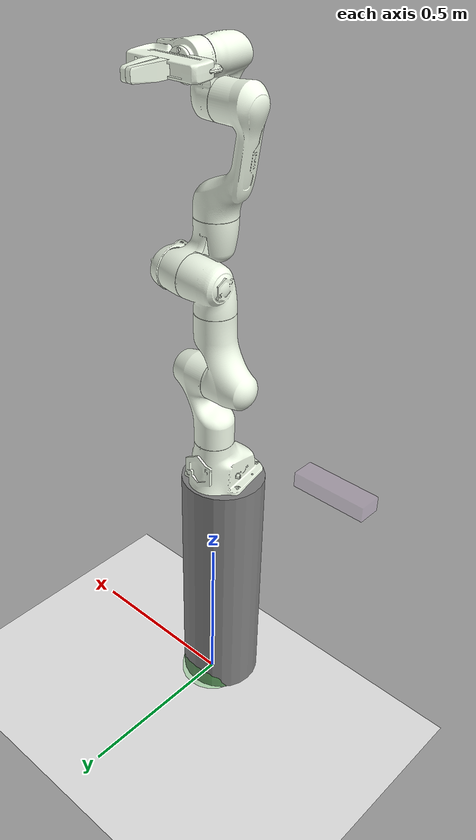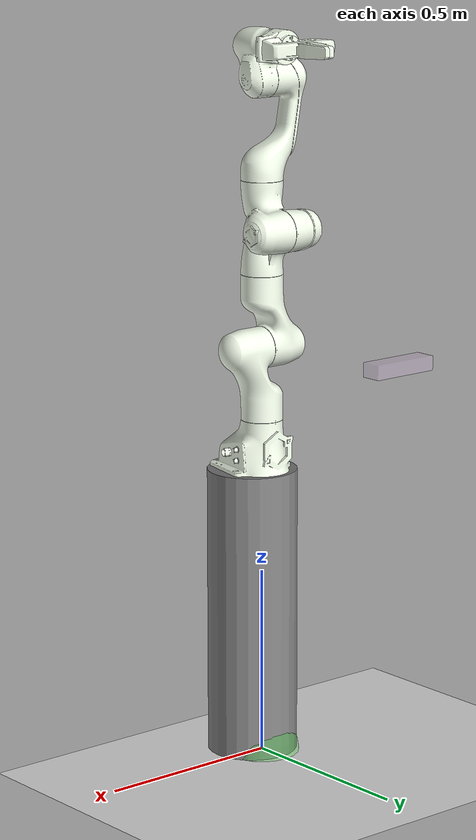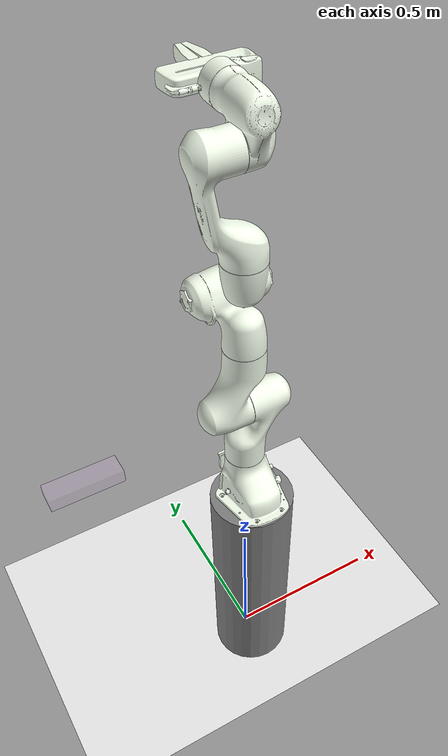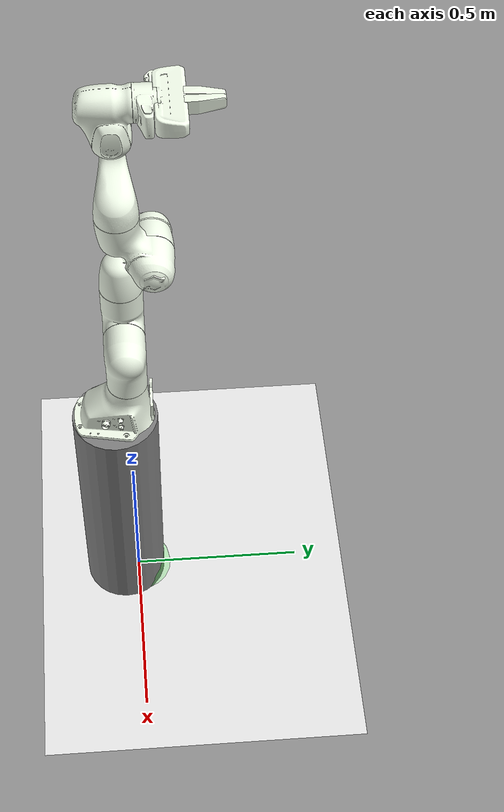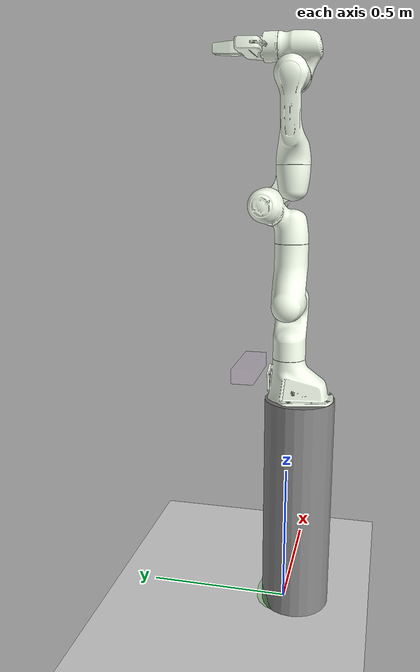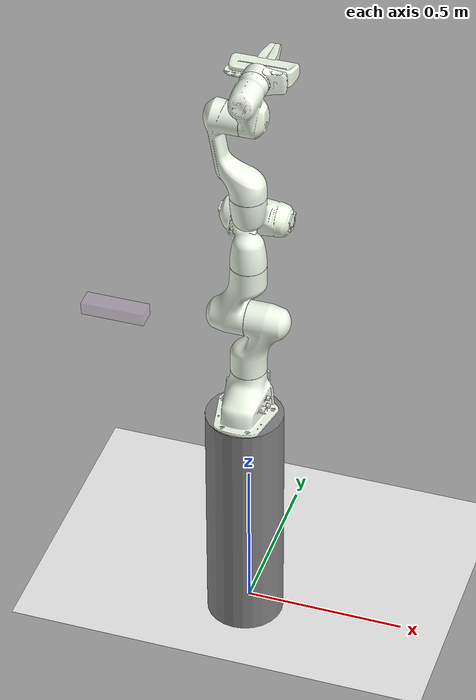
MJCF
<?xml version="1.0"?>
<mujoco model="franka_mocap_studyTable_buttons">
  <compiler angle="radian" meshdir="../../adept_models/franka" texturedir="../../adept_models/franka"/>
  <size njmax="1000" nconmax="1000"/>
  <include file="../../adept_models/scenes/basic_scene.xml"/>
  <include file="../../adept_models/franka/assets/assets.xml"/>
  <include file="../../adept_models/franka/assets/actuator0.xml"/>
  <equality>
    <weld body1="vive_controller" body2="world" solref="0.02 1" solimp=".7 .95 0.050"/>
  </equality>
  <worldbody>
    <!-- Mocap -->
    <body name="vive_controller" mocap="true" pos="-0.440 -0.092 1.001" euler="-1.57 0 -.785">
      <geom type="box" group="2" pos="0 0 .142" size="0.02 0.10 0.03" contype="0" conaffinity="0" rgba=".9 .7 .95 .2" euler="0 0 -.785"/>
    </body>
    <site name="target" pos="0 0 0" size="0.1" rgba="0 2 0 .2"/>
    <camera name="left_cap" pos="-1.2 -0.5 1.8" quat="0.78 0.49 -0.22 -0.32"/>
    <camera name="right_cap" pos="1.2 -0.5 1.8" quat="0.76 0.5 0.21 0.35"/>
    <!-- Robot -->
    <body pos="0 0 .775" euler="0 0 1.57">
      <geom type="cylinder" size=".120 .4" pos="-.04 0 -.4"/>
      <include file="../../adept_models/franka/assets/chain0.xml"/>
    </body>
  </worldbody>
  <keyframe>
    <key qpos="0.012 0.02 -0.12 -0.39 -0.20 1.69 0.50 0.00 0.00"/>
  </keyframe>
</mujoco>

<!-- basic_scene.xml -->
<mujocoinclude>
  <asset>
    <texture name="skybox" type="skybox" builtin="gradient" rgb1=".08 .09 .10" rgb2="0 0 0" width="800" height="800" mark="random" markrgb=".8 .8 .8"/>
    <texture name="texplane" type="2d" height="1" width="1" file="../scenes/textures/white_marble_tile2.png"/>
    <material name="MatPlane" reflectance="0.05" texture="texplane" texrepeat="4 4" texuniform="true"/>
  </asset>
  <visual>
    <map fogstart="1.5" fogend="5" force="0.1" znear="0.1"/>
    <quality shadowsize="4096" offsamples="4"/>
  </visual>
  <worldbody>
    <light directional="true" diffuse=".3 .3 .3" specular="0.3 0.3 0.3" pos="-1 -1 1" dir="1 1 -1"/>
    <light directional="true" diffuse=".3 .3 .3" specular="0.3 0.3 0.3" pos="1 -1 1" dir="-1 1 -1"/>
    <light directional="true" diffuse=".3 .3 .3" specular="0.3 0.3 0.3" pos="0 1 1" dir="0 -1 -1"/>
    <geom name="floor" pos="0 0 0" size="5 5 .1" conaffinity="1" contype="1" type="plane" material="MatPlane" condim="3"/>
    <site name="xaxis" pos=".5 0 0" size=".005 .5" type="capsule" rgba="1 0 0 .25" euler="0 1.57 0" group="3"/>
    <site name="yaxis" pos="0 .5 0" size=".005 .5" type="capsule" rgba="0 1 0 .25" euler="1.57 0 0" group="3"/>
  </worldbody>
</mujocoinclude>

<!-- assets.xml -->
<mujocoinclude>
  <compiler angle="radian"/>
  <option timestep="0.002"/>
  <size nuser_actuator="5"/>
  <asset>
    <mesh name="link0_col" file="../franka/meshes/collision/link0.stl"/>
    <mesh name="link1_col" file="../franka/meshes/collision/link1.stl"/>
    <mesh name="link2_col" file="../franka/meshes/collision/link2.stl"/>
    <mesh name="link3_col" file="../franka/meshes/collision/link3.stl"/>
    <mesh name="link4_col" file="../franka/meshes/collision/link4.stl"/>
    <mesh name="link5_col" file="../franka/meshes/collision/link5.stl"/>
    <mesh name="link6_col" file="../franka/meshes/collision/link6.stl"/>
    <mesh name="link7_col" file="../franka/meshes/collision/link7.stl"/>
    <mesh name="hand_col" file="../franka/meshes/collision/hand.stl"/>
    <mesh name="finger_col" file="../franka/meshes/collision/finger.stl" scale="1.75 1.0 1.75"/>
    <mesh name="link0_viz" file="../franka/meshes/visual/link0.stl"/>
    <mesh name="link1_viz" file="../franka/meshes/visual/link1.stl"/>
    <mesh name="link2_viz" file="../franka/meshes/visual/link2.stl"/>
    <mesh name="link3_viz" file="../franka/meshes/visual/link3.stl"/>
    <mesh name="link4_viz" file="../franka/meshes/visual/link4.stl"/>
    <mesh name="link5_viz" file="../franka/meshes/visual/link5.stl"/>
    <mesh name="link6_viz" file="../franka/meshes/visual/link6.stl"/>
    <mesh name="link7_viz" file="../franka/meshes/visual/link7.stl"/>
    <mesh name="hand_viz" file="../franka/meshes/visual/hand.stl"/>
    <mesh name="finger_viz" file="../franka/meshes/collision/finger.stl" scale="1.75 1.0 1.75"/>
  </asset>
  <default>
    <default class="panda">
      <joint pos="0 0 0" axis="0 0 1" limited="true"/>
      <position forcelimited="true" ctrllimited="true" user="1002 40 2001 -0.005 0.005"/>
      <default class="panda_viz">
        <geom contype="0" conaffinity="0" group="0" type="mesh" rgba=".95 .99 .92 1" mass="0"/>
      </default>
      <default class="panda_col">
        <geom contype="1" conaffinity="1" group="3" type="mesh" rgba=".5 .6 .7 1"/>
      </default>
      <default class="panda_arm">
        <joint damping="100"/>
      </default>
      <default class="panda_forearm">
        <joint damping="10"/>
      </default>
      <default class="panda_finger">
        <joint damping="100" armature="5"/>
        <geom friction="1 0.5 0.0001" solref="0.01 1" solimp="0.8 0.9 0.001" margin="0.001" user="0" rgba="0.5 0.6 0.7 .4" contype="1" conaffinity="0" condim="6" group="3"/>
        <position user="1002 40 2001 -0.0001 0.0001"/>
      </default>
    </default>
    <default class="panda_overlay">
      <joint limited="false" damping="1000" armature="1" frictionloss="10"/>
      <geom contype="0" conaffinity="0" group="2" type="mesh" rgba=".42 0.42 0.42 .5"/>
    </default>
  </default>
</mujocoinclude>

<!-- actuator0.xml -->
<mujocoinclude>
  <actuator>
    <!-- velocity="2.1750" -->
    <!-- velocity="2.1750" -->
    <!-- velocity="2.1750" -->
    <!-- velocity="2.1750" -->
    <!-- velocity="2.6100" -->
    <!-- velocity="2.6100" -->
    <!-- velocity="2.9671" -->
    <position name="r_gripper_finger_joint" joint="panda0_finger_joint1" class="panda_finger" kp="500" forcerange="-70 70" ctrlrange="0 0.04"/>
    <!-- velocity=".2" -->
    <position name="l_gripper_finger_joint" joint="panda0_finger_joint2" class="panda_finger" kp="500" forcerange="-70 70" ctrlrange="0 0.04"/>
    <!-- velocity=".2" -->
  </actuator>
</mujocoinclude>

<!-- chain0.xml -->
<!-- Robot limits pulled from https://frankaemika.github.io/docs/control_parameters.html#constants -->
<mujocoinclude>
  <body name="panda0_link0" childclass="panda">
    <geom class="panda_viz" mesh="link0_viz"/>
    <geom class="panda_col" mesh="link0_col" mass="2.91242"/>
    <body name="panda0_link1" pos="0 0 0.333">
      <joint name="panda0_joint1" range="-2.8973 2.8973" class="panda_arm"/>
      <geom class="panda_viz" mesh="link1_viz"/>
      <geom class="panda_col" mesh="link1_col" mass="2.7063"/>
      <body name="panda0_link2" pos="0 0 0" quat="0.707107 -0.707107 0 0">
        <joint name="panda0_joint2" range="-1.7628 1.7628" class="panda_arm"/>
        <geom class="panda_viz" mesh="link2_viz"/>
        <geom class="panda_col" mesh="link2_col" mass="2.73046"/>
        <body name="panda0_link3" pos="0 -0.316 0" quat="0.707107 0.707107 0 0">
          <joint name="panda0_joint3" range="-2.8973 2.8973" class="panda_arm"/>
          <geom class="panda_viz" mesh="link3_viz"/>
          <geom class="panda_col" mesh="link3_col" mass="2.04104"/>
          <body name="panda0_link4" pos="0.0825 0 0" quat="0.707107 0.707107 0 0">
            <joint name="panda0_joint4" range="-3.0718 -0.4" class="panda_arm"/>
            <geom class="panda_viz" mesh="link4_viz"/>
            <geom class="panda_col" mesh="link4_col" mass="2.08129"/>
            <body name="panda0_link5" pos="-0.0825 0.384 0" quat="0.707107 -0.707107 0 0">
              <joint name="panda0_joint5" range="-2.8973 2.8973" class="panda_forearm"/>
              <geom class="panda_viz" mesh="link5_viz"/>
              <geom class="panda_col" mesh="link5_col" mass="3.00049"/>
              <body name="panda0_link6" pos="0 0 0" euler="1.57 0 1.57">
                <joint name="panda0_joint6" range="-1.6573 2.1127" class="panda_forearm"/>
                <geom class="panda_viz" mesh="link6_viz"/>
                <geom class="panda_col" mesh="link6_col" mass="1.3235"/>
                <body name="panda0_link7" pos="0.088 0 0" euler="1.57 0 0.7854">
                  <joint name="panda0_joint7" range="-2.8973 2.8973" class="panda_forearm"/>
                  <geom class="panda_viz" mesh="link7_viz"/>
                  <geom class="panda_col" mesh="link7_col" mass="0.2"/>
                  <geom pos="0 0 0.107" quat="0.92388 0 0 -0.382683" class="panda_viz" mesh="hand_viz"/>
                  <geom pos="0 0 0.107" quat="0.92388 0 0 -0.382683" class="panda_col" mesh="hand_col" mass="0.81909"/>
                  <site name="end_effector" pos="0 0 .210" size="0.01" euler="0 0 -0.785398"/>
                  <body name="panda0_leftfinger" pos="0 0 0.1654" quat="0.92388 0 0 -0.382683" childclass="panda_finger">
                    <inertial pos="-1.57863e-05 0.0118731 0.0434103" quat="0.705868 0.0310348 -0.0314925 0.706962" mass="0.0927059" diaginertia="6.57134e-05 6.09611e-05 1.09932e-05"/>
                    <joint name="panda0_finger_joint1" axis="0 1 0" type="slide" range="0 0.04" class="panda_finger"/>
                    <geom class="panda_viz" mesh="finger_viz"/>
                    <geom size="0.0070" fromto=".009 .006 .0875   -.009 .009 .0875" type="capsule"/>
                    <geom size="0.0070" fromto=".009 .009 .0875   -.009 .006 .0875" type="capsule"/>
                    <geom size="0.0075" fromto=".009 .007 .0775   -.009 .010 .0775" type="capsule"/>
                    <geom size="0.0075" fromto=".009 .010 .0775   -.009 .007 .0775" type="capsule"/>
                    <geom size="0.0082" fromto=".009 .008 .0675   -.009 .011 .0675" type="capsule"/>
                    <geom size="0.0082" fromto=".009 .011 .0675   -.009 .008 .0675" type="capsule"/>
                    <geom size="0.0090" fromto=".009 .009 .0575   -.009 .012 .0575" type="capsule"/>
                    <geom size="0.0090" fromto=".009 .012 .0575   -.009 .009 .0575" type="capsule"/>
                    <geom size="0.0100" fromto=".009 .0105 .0475   -.009 .0135 .0475" type="capsule"/>
                    <geom size="0.0100" fromto=".009 .0135 .0475   -.009 .0105 .0475" type="capsule"/>
                    <geom size="0.0110" fromto=".009 .012 .035   -.009 .015 .035" type="capsule"/>
                    <geom size="0.0110" fromto=".009 .015 .035   -.009 .012 .035" type="capsule"/>
                    <geom size="0.0185 0.0120 0.0175" pos="0 0.014 0.015" type="box" euler=".03 0 0"/>
                  </body>
                  <body name="panda0_rightfinger" pos="0 0 0.1654" quat="0.92388 0 0 -0.382683" childclass="panda_finger">
                    <inertial pos="1.57863e-05 -0.0118731 0.0434103" quat="0.705868 -0.0310348 0.0314925 0.706962" mass="0.0927059" diaginertia="6.57134e-05 6.09611e-05 1.09932e-05"/>
                    <joint name="panda0_finger_joint2" axis="0 -1 0" type="slide" range="0 0.04" class="panda_finger"/>
                    <geom quat="0 0 0 1" class="panda_viz" mesh="finger_viz"/>
                    <geom size="0.0070" fromto=".009 -.006 .0875   -.009 -.009 .0875" type="capsule"/>
                    <geom size="0.0070" fromto=".009 -.009 .0875   -.009 -.006 .0875" type="capsule"/>
                    <geom size="0.0075" fromto=".009 -.007 .0775   -.009 -.010 .0775" type="capsule"/>
                    <geom size="0.0075" fromto=".009 -.010 .0775   -.009 -.007 .0775" type="capsule"/>
                    <geom size="0.0082" fromto=".009 -.008 .0675   -.009 -.011 .0675" type="capsule"/>
                    <geom size="0.0082" fromto=".009 -.011 .0675   -.009 -.008 .0675" type="capsule"/>
                    <geom size="0.0090" fromto=".009 -.009 .0575   -.009 -.012 .0575" type="capsule"/>
                    <geom size="0.0090" fromto=".009 -.012 .0575   -.009 -.009 .0575" type="capsule"/>
                    <geom size="0.0100" fromto=".009 -.0105 .0475   -.009 -.0135 .0475" type="capsule"/>
                    <geom size="0.0100" fromto=".009 -.0135 .0475   -.009 -.0105 .0475" type="capsule"/>
                    <geom size="0.0110" fromto=".009 -.012 .035   -.009 -.015 .035" type="capsule"/>
                    <geom size="0.0110" fromto=".009 -.015 .035   -.009 -.012 .035" type="capsule"/>
                    <geom size="0.0185 0.0120 0.0175" pos="0 -.014 0.015" type="box" euler="-.03 0 0"/>
                  </body>
                </body>
              </body>
            </body>
          </body>
        </body>
      </body>
    </body>
  </body>
</mujocoinclude>
